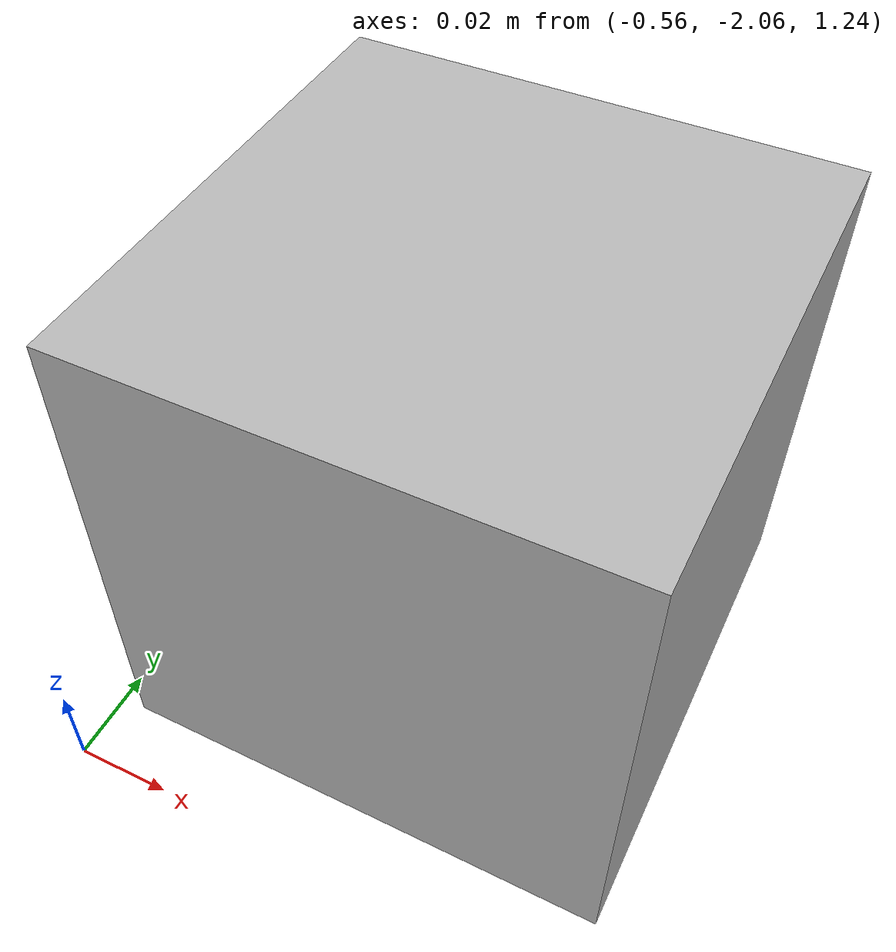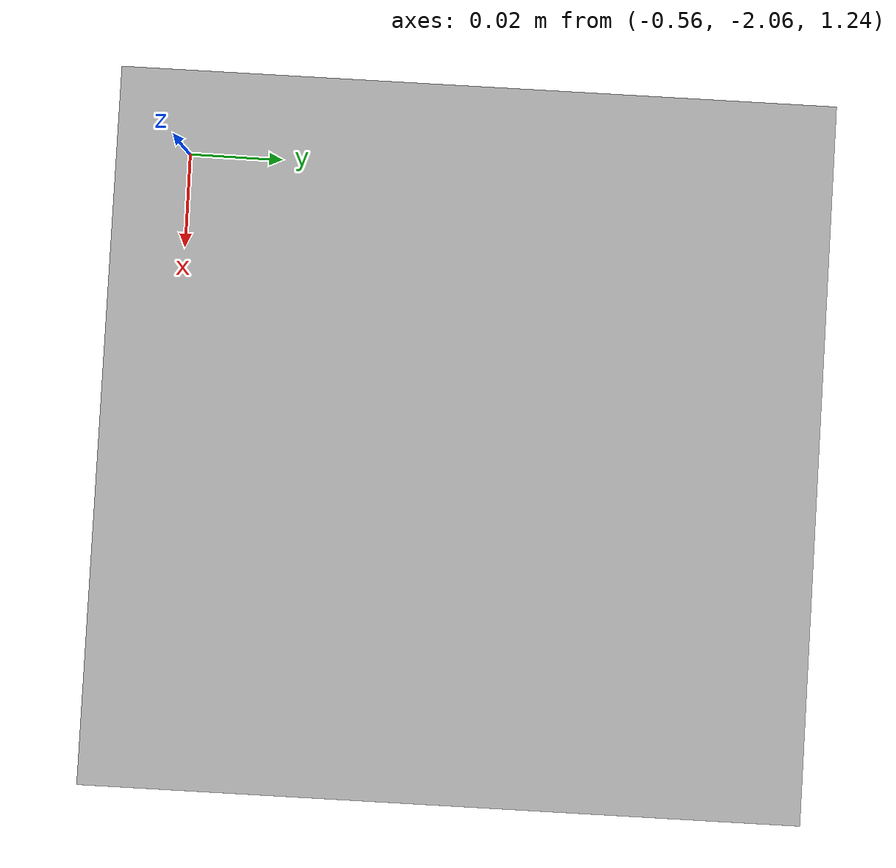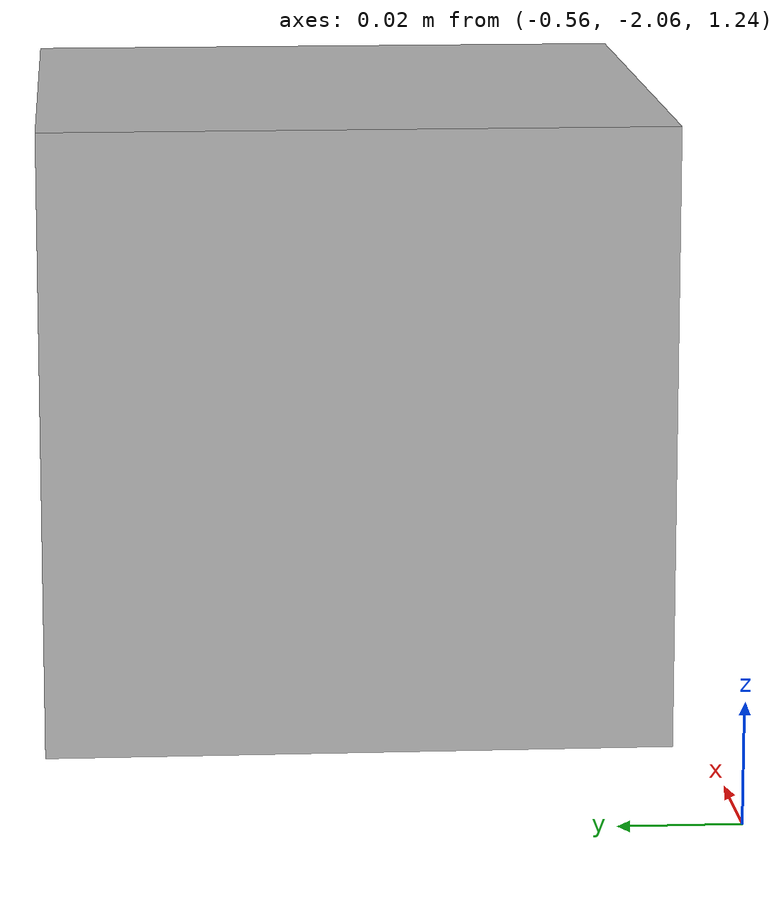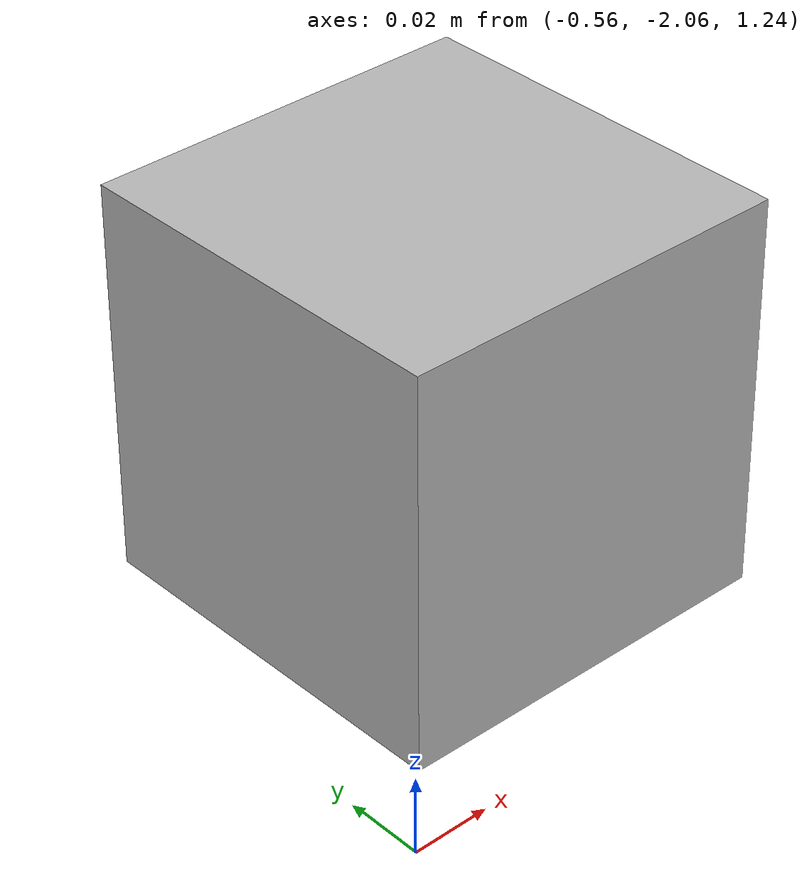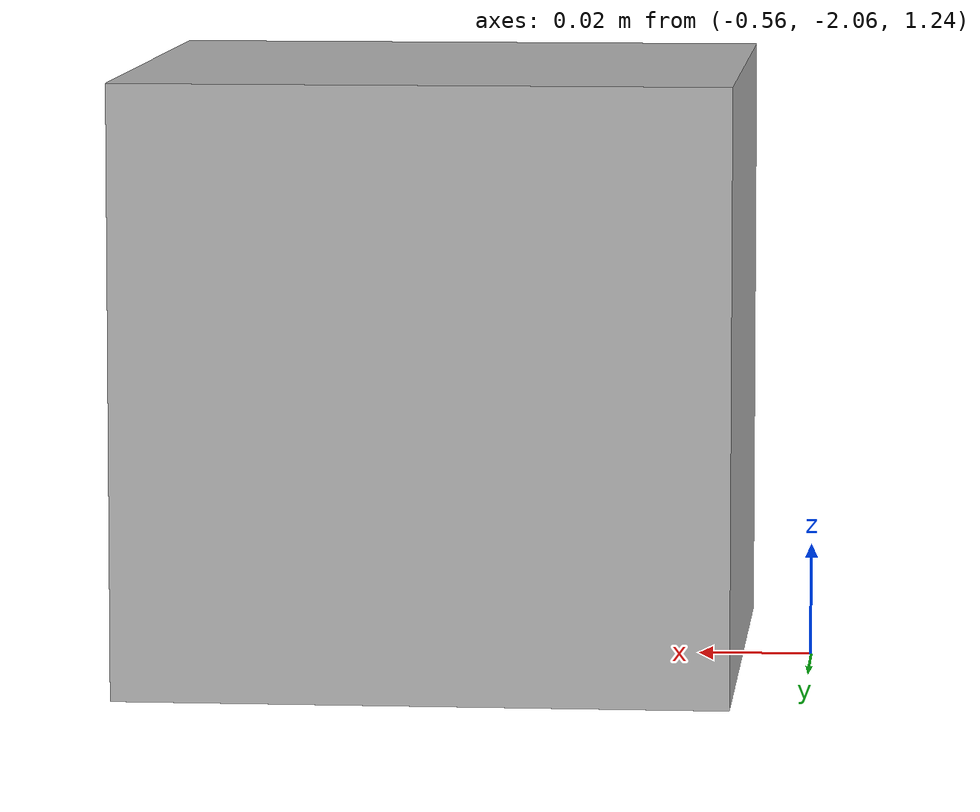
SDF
<?xml version="1.0" ?>
<sdf version="1.5">
    <model name="camera">
        <pose>-1 -2.5 0.8 0 0.0 0</pose>
        <link name="link">
            <pose>0.5 0.5 0.5 0 0 1.5708</pose>
            <inertial>
                <mass>0.1</mass>
                <inertia>
                    <ixx>0.000166667</ixx>
                    <iyy>0.000166667</iyy>
                    <izz>0.000166667</izz>
                </inertia>
            </inertial>
            <collision name="collision">
                <geometry>
                    <box>
                        <size>0.1 0.1 0.1</size>
                    </box>
                </geometry>
            </collision>
            <visual name="visual">
                <geometry>
                    <box>
                        <size>0.1 0.1 0.1</size>
                    </box>
                </geometry>
            </visual>
            <sensor name="camera" type="camera">
                <camera>
                    <horizontal_fov>1.5</horizontal_fov>
                    <image>
                        <width>500</width>
                        <height>500</height>
                    </image>
                    <clip>
                        <near>0.1</near>
                        <far>100</far>
                    </clip>
                </camera>
                <always_on>1</always_on>
                <update_rate>30</update_rate>
                <visualize>true</visualize>
                <topic>camera</topic>
            </sensor>
        </link>
    </model>
</sdf>
